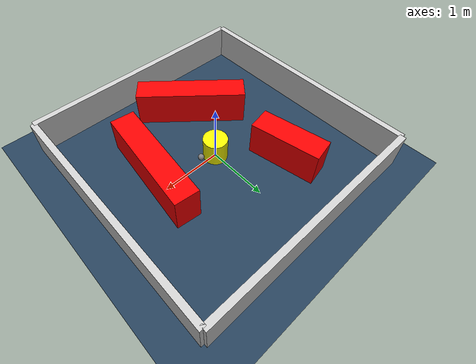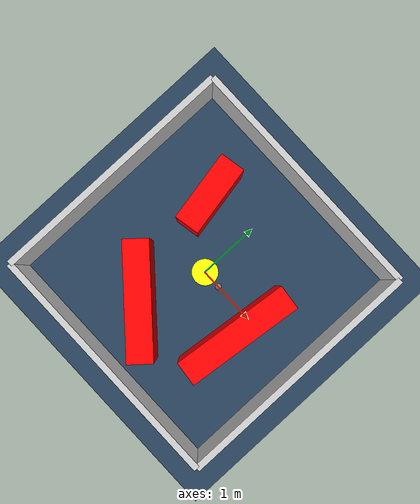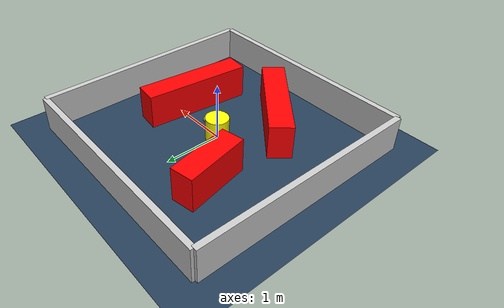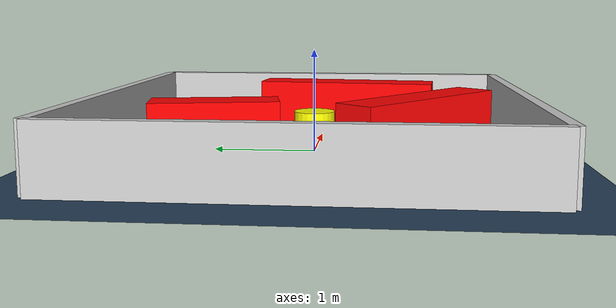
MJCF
<?xml version="1.0" ?>
<mujoco model="generated_environment">
  <option timestep="0.01" integrator="RK4" cone="elliptic"/>
  <default>
    <geom density="1"/>
  </default>
  <asset>
    <texture builtin="gradient" height="3072" rgb1="0.3 0.5 0.7" rgb2="0 0 0" type="skybox" width="512"/>
    <texture builtin="checker" height="300" mark="edge" markrgb="0.8 0.8 0.8" name="groundplane" rgb1="0.2 0.3 0.4" rgb2="0.1 0.2 0.3" type="2d" width="300"/>
    <material name="groundplane" reflectance="0.2" texrepeat="5 5" texture="groundplane" texuniform="true"/>
    <material name="robot" rgba="0.0 1.0 0.0 1"/>
  </asset>
  <worldbody>
    <light dir="0 0 -1" directional="true" pos="0 0 1.5"/>
    <geom condim="4" friction="1.0 0.005 0.001" material="groundplane" name="floor" size="0 0 0.05" type="plane"/>
    <body name="walls">
      <geom name="wall_1" condim="4" pos="-2.0 0.0 0.3" rgba="0.800000011920929 0.800000011920929 0.800000011920929 1.0" size="0.05 2.0 0.3" type="box"/>
      <geom name="wall_2" condim="4" pos="2.0 0.0 0.3" rgba="0.800000011920929 0.800000011920929 0.800000011920929 1.0" size="0.05 2.0 0.3" type="box"/>
      <geom name="wall_3" condim="4" pos="0.0 -2.0 0.3" rgba="0.800000011920929 0.800000011920929 0.800000011920929 1.0" size="2.0 0.05 0.3" type="box"/>
      <geom name="wall_4" condim="4" pos="0.0 2.0 0.3" rgba="0.800000011920929 0.800000011920929 0.800000011920929 1.0" size="2.0 0.05 0.3" type="box"/>
    </body>
    <body name="robot">
      <joint name="joint_x" type="slide" pos="0 0 0" axis="1 0 0"/>
      <joint name="joint_y" type="slide" pos="0 0 0" axis="0 1 0"/>
      <geom name="robot" type="sphere" pos="0.3 0.0 0.2" size="0.05" mass="5." friction="1.0 0.005 0.0001" condim="4" rgba="0.5 0.5 0.5 1.0"/>
      <site name="sensor_ball"/>
    </body>
    <body name="obstacle_movable_1">
      <geom name="obstacle_movable_1" condim="4" pos="0.0 0.0 0.2" euler="0 0 0.0" friction="1.0 0.005 0.001" rgba="1.0 1.0 0.0 1.0" size="0.2 0.2 0.0" type="cylinder" mass="0.1"/>
      <joint type="free"/>
    </body>
    <body name="obstacle_2_static">
      <geom name="obstacle_2_static" condim="4" pos="0.9948873153794702 -0.27663071025431707 0.3" euler="0 0 263.8083133297939" friction="1.0 0.005 0.001" rgba="1 0 0 1" size="0.9350730816357016 0.2 0.3" type="box"/>
    </body>
    <body name="obstacle_3_static">
      <geom name="obstacle_3_static" condim="4" pos="-0.7914391553059145 0.8202810596095305 0.3" euler="0 0 101.05328624569665" friction="1.0 0.005 0.001" rgba="1 0 0 1" size="0.5694954459698303 0.2 0.3" type="box"/>
    </body>
    <body name="obstacle_4_static">
      <geom name="obstacle_4_static" condim="4" pos="-0.3476269948756112 -1.002839381280207 0.3" euler="0 0 139.5705824663571" friction="1.0 0.005 0.001" rgba="1 0 0 1" size="0.9092833031637768 0.2 0.3" type="box"/>
    </body>
  </worldbody>
  <actuator>
    <motor name="actuator_x" joint="joint_x" gear="1" ctrlrange="-1 1"/>
    <motor name="actuator_y" joint="joint_y" gear="1" ctrlrange="-1 1"/>
  </actuator>
</mujoco>
